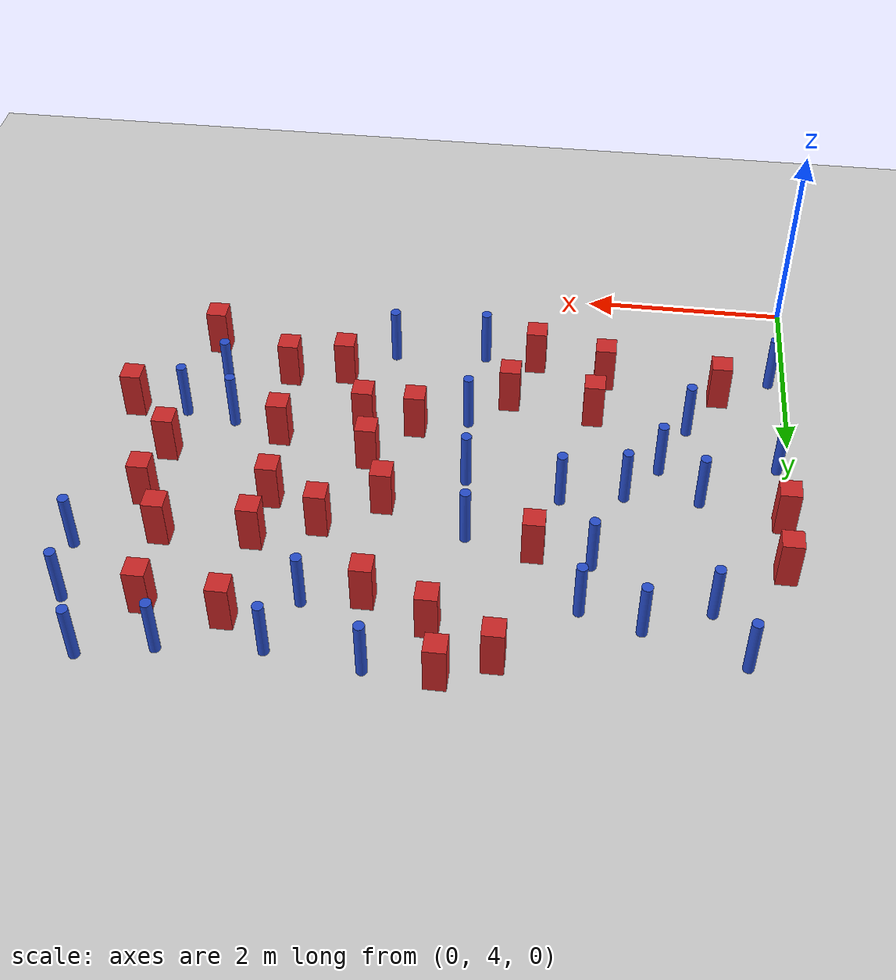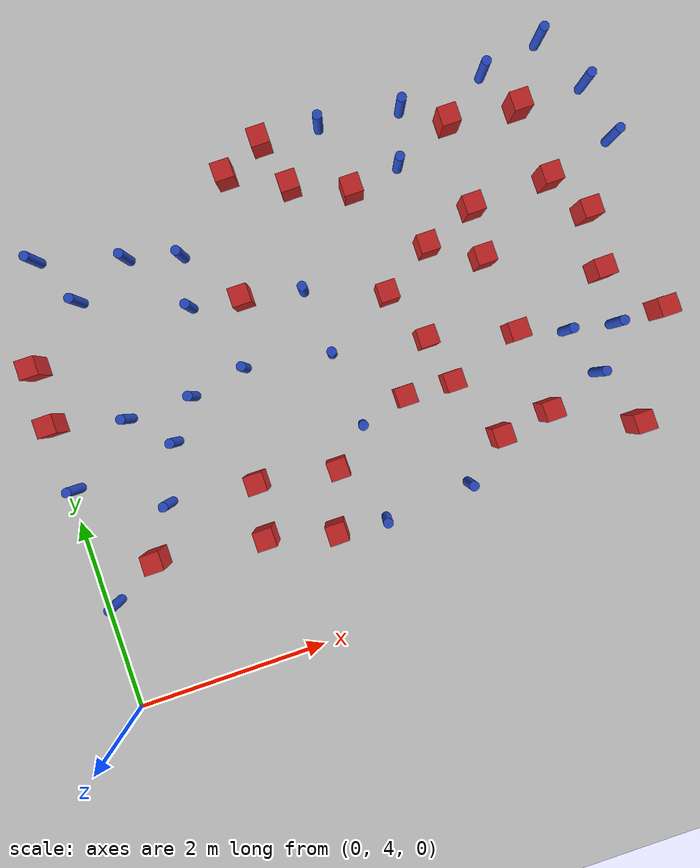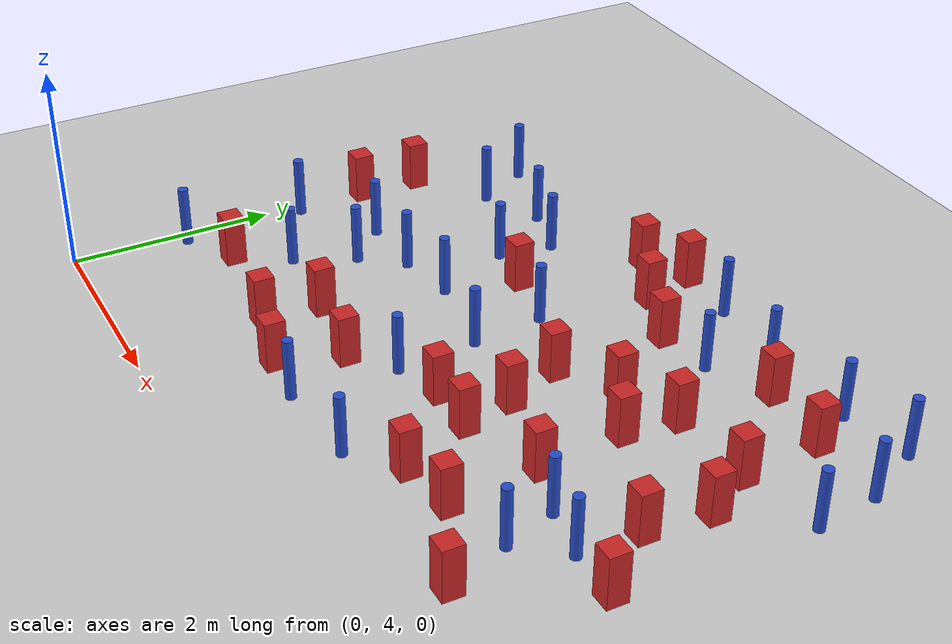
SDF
<sdf version="1.6">
 <world name="default">
  <model name="ground_plane">
   <static>1</static>
   <link name="link">
    <collision name="collision">
     <geometry><plane><normal>0 0 1</normal><size>100 100</size></plane></geometry>
     <surface><friction><ode><mu>100</mu><mu2>50</mu2></ode></friction></surface>
    </collision>
    <visual name="visual">
     <cast_shadows>0</cast_shadows>
     <geometry><plane><normal>0 0 1</normal><size>100 100</size></plane></geometry>
     <material>
      <ambient>1.0 1.0 1.0 1.0</ambient>
      <diffuse>0.8 0.8 0.8 1.0</diffuse>
      <specular>0.01 0.01 0.01 1.000000</specular>
     </material>
    </visual>
   </link>
  </model>
  <model name="pole_obstacle3">
   <static>true</static>
   <pose>3.03864295202 6.81444231652 2.88873142074e-08 -9.90536689859e-09 4.60219948989e-07 -1.20965994961e-07</pose>
   <link name="link">
    <pose>0 0 0.3 0 -0 0</pose>
    <inertial>
     <mass>1</mass>
     <inertia><ixx>0.145833</ixx><ixy>0</ixy><ixz>0</ixz><iyy>0.145833</iyy><iyz>0</iyz><izz>0.125</izz></inertia>
    </inertial>
    <collision name="collision">
     <geometry><cylinder><radius>0.05</radius><length>.6</length></cylinder></geometry>
    </collision>
    <visual name="visual">
     <geometry><cylinder><radius>0.05</radius><length>.6</length></cylinder></geometry>
     <material>
      <script><name>Gazebo/Blue</name><uri>file://media/materials/scripts/gazebo.material</uri></script>
     </material>
    </visual>
   </link>
  </model>
  <model name="pole_obstacle15">
   <static>true</static>
   <pose>4.30699988644 8.43849665752 2.88873142074e-08 -9.9053668967e-09 4.60219948993e-07 -1.20965994957e-07</pose>
   <link name="link">
    <pose>0 0 0.3 0 -0 0</pose>
    <inertial>
     <mass>1</mass>
     <inertia><ixx>0.145833</ixx><ixy>0</ixy><ixz>0</ixz><iyy>0.145833</iyy><iyz>0</iyz><izz>0.125</izz></inertia>
    </inertial>
    <collision name="collision">
     <geometry><cylinder><radius>0.05</radius><length>.6</length></cylinder></geometry>
    </collision>
    <visual name="visual">
     <geometry><cylinder><radius>0.05</radius><length>.6</length></cylinder></geometry>
     <material>
      <script><name>Gazebo/Blue</name><uri>file://media/materials/scripts/gazebo.material</uri></script>
     </material>
    </visual>
   </link>
  </model>
  <model name="pole_obstacle16">
   <static>true</static>
   <pose>3.65973734561 9.09488109856 2.88873142074e-08 -9.90536692318e-09 4.6021994893e-07 -1.20965994988e-07</pose>
   <link name="link">
    <pose>0 0 0.3 0 -0 0</pose>
    <inertial>
     <mass>1</mass>
     <inertia><ixx>0.145833</ixx><ixy>0</ixy><ixz>0</ixz><iyy>0.145833</iyy><iyz>0</iyz><izz>0.125</izz></inertia>
    </inertial>
    <collision name="collision">
     <geometry><cylinder><radius>0.05</radius><length>.6</length></cylinder></geometry>
    </collision>
    <visual name="visual">
     <geometry><cylinder><radius>0.05</radius><length>.6</length></cylinder></geometry>
     <material>
      <script><name>Gazebo/Blue</name><uri>file://media/materials/scripts/gazebo.material</uri></script>
     </material>
    </visual>
   </link>
  </model>
  <model name="square_post_obstacle17">
   <static>true</static>
   <pose>5.98129903861 7.36066911239 8.22691968438e-08 7.2212513382e-06 -7.54495500217e-07 2.29674213826e-05</pose>
   <link name="link">
    <pose>0 0 0.25 0 -0 0</pose>
    <inertial>
     <mass>100</mass>
     <inertia>
      <ixx>0.166667</ixx>
      <ixy>0</ixy>
      <ixz>0</ixz>
      <iyy>0.166667</iyy>
      <iyz>0</iyz>
      <izz>0.166667</izz>
     </inertia>
    </inertial>
    <collision name="collision"><geometry><box><size>.2 .2 .5</size></box></geometry></collision>
    <visual name="visual">
     <geometry><box><size>.2 .2 .5</size></box></geometry>
     <material>
      <script><name>Gazebo/Red</name><uri>file://media/materials/scripts/gazebo.material</uri></script>
     </material>
    </visual>
   </link>
  </model>
  <model name="pole_obstacle25">
   <static>true</static>
   <pose>5.43299807183 9.06527341968 2.88873142074e-08 -9.9053668967e-09 4.60219948993e-07 -1.20965994957e-07</pose>
   <link name="link">
    <pose>0 0 0.3 0 -0 0</pose>
    <inertial>
     <mass>1</mass>
     <inertia><ixx>0.145833</ixx><ixy>0</ixy><ixz>0</ixz><iyy>0.145833</iyy><iyz>0</iyz><izz>0.125</izz></inertia>
    </inertial>
    <collision name="collision">
     <geometry><cylinder><radius>0.05</radius><length>.6</length></cylinder></geometry>
    </collision>
    <visual name="visual">
     <geometry><cylinder><radius>0.05</radius><length>.6</length></cylinder></geometry>
     <material>
      <script><name>Gazebo/Blue</name><uri>file://media/materials/scripts/gazebo.material</uri></script>
     </material>
    </visual>
   </link>
  </model>
  <model name="pole_obstacle27">
   <static>true</static>
   <pose>0.976012090959 5.89816593282 2.88873142074e-08 -9.90536689421e-09 4.60219948999e-07 -1.20965994953e-07</pose>
   <link name="link">
    <pose>0 0 0.3 0 -0 0</pose>
    <inertial>
     <mass>1</mass>
     <inertia><ixx>0.145833</ixx><ixy>0</ixy><ixz>0</ixz><iyy>0.145833</iyy><iyz>0</iyz><izz>0.125</izz></inertia>
    </inertial>
    <collision name="collision">
     <geometry><cylinder><radius>0.05</radius><length>.6</length></cylinder></geometry>
    </collision>
    <visual name="visual">
     <geometry><cylinder><radius>0.05</radius><length>.6</length></cylinder></geometry>
     <material>
      <script><name>Gazebo/Blue</name><uri>file://media/materials/scripts/gazebo.material</uri></script>
     </material>
    </visual>
   </link>
  </model>
  <model name="pole_obstacle28">
   <static>true</static>
   <pose>4.51472767566 8.98976667733 2.88873142074e-08 -9.9053668967e-09 4.60219948993e-07 -1.20965994957e-07</pose>
   <link name="link">
    <pose>0 0 0.3 0 -0 0</pose>
    <inertial>
     <mass>1</mass>
     <inertia><ixx>0.145833</ixx><ixy>0</ixy><ixz>0</ixz><iyy>0.145833</iyy><iyz>0</iyz><izz>0.125</izz></inertia>
    </inertial>
    <collision name="collision">
     <geometry><cylinder><radius>0.05</radius><length>.6</length></cylinder></geometry>
    </collision>
    <visual name="visual">
     <geometry><cylinder><radius>0.05</radius><length>.6</length></cylinder></geometry>
     <material>
      <script><name>Gazebo/Blue</name><uri>file://media/materials/scripts/gazebo.material</uri></script>
     </material>
    </visual>
   </link>
  </model>
  <model name="pole_obstacle31">
   <static>true</static>
   <pose>1.35216881646 8.41963204359 2.88873142074e-08 -9.90536690474e-09 4.60219948974e-07 -1.2096599497e-07</pose>
   <link name="link">
    <pose>0 0 0.3 0 -0 0</pose>
    <inertial>
     <mass>1</mass>
     <inertia><ixx>0.145833</ixx><ixy>0</ixy><ixz>0</ixz><iyy>0.145833</iyy><iyz>0</iyz><izz>0.125</izz></inertia>
    </inertial>
    <collision name="collision">
     <geometry><cylinder><radius>0.05</radius><length>.6</length></cylinder></geometry>
    </collision>
    <visual name="visual">
     <geometry><cylinder><radius>0.05</radius><length>.6</length></cylinder></geometry>
     <material>
      <script><name>Gazebo/Blue</name><uri>file://media/materials/scripts/gazebo.material</uri></script>
     </material>
    </visual>
   </link>
  </model>
  <model name="pole_obstacle44">
   <static>true</static>
   <pose>0.120676297792 6.33723324968 2.88873142074e-08 -9.90536689835e-09 4.60219948989e-07 -1.20965994961e-07</pose>
   <link name="link">
    <pose>0 0 0.3 0 -0 0</pose>
    <inertial>
     <mass>1</mass>
     <inertia><ixx>0.145833</ixx><ixy>0</ixy><ixz>0</ixz><iyy>0.145833</iyy><iyz>0</iyz><izz>0.125</izz></inertia>
    </inertial>
    <collision name="collision">
     <geometry><cylinder><radius>0.05</radius><length>.6</length></cylinder></geometry>
    </collision>
    <visual name="visual">
     <geometry><cylinder><radius>0.05</radius><length>.6</length></cylinder></geometry>
     <material>
      <script><name>Gazebo/Blue</name><uri>file://media/materials/scripts/gazebo.material</uri></script>
     </material>
    </visual>
   </link>
  </model>
  <model name="square_post_obstacle35">
   <static>true</static>
   <pose>4.11081844571 6.15034953788 8.22691968438e-08 7.2212513382e-06 -7.54495500217e-07 2.29674213826e-05</pose>
   <link name="link">
    <pose>0 0 0.25 0 -0 0</pose>
    <inertial>
     <mass>100</mass>
     <inertia>
      <ixx>0.166667</ixx>
      <ixy>0</ixy>
      <ixz>0</ixz>
      <iyy>0.166667</iyy>
      <iyz>0</iyz>
      <izz>0.166667</izz>
     </inertia>
    </inertial>
    <collision name="collision"><geometry><box><size>.2 .2 .5</size></box></geometry></collision>
    <visual name="visual">
     <geometry><box><size>.2 .2 .5</size></box></geometry>
     <material>
      <script><name>Gazebo/Red</name><uri>file://media/materials/scripts/gazebo.material</uri></script>
     </material>
    </visual>
   </link>
  </model>
  <model name="pole_obstacle51">
   <static>true</static>
   <pose>3.10217281065 6.02231684743 2.88873142074e-08 -9.90536689859e-09 4.60219948989e-07 -1.20965994961e-07</pose>
   <link name="link">
    <pose>0 0 0.3 0 -0 0</pose>
    <inertial>
     <mass>1</mass>
     <inertia><ixx>0.145833</ixx><ixy>0</ixy><ixz>0</ixz><iyy>0.145833</iyy><iyz>0</iyz><izz>0.125</izz></inertia>
    </inertial>
    <collision name="collision">
     <geometry><cylinder><radius>0.05</radius><length>.6</length></cylinder></geometry>
    </collision>
    <visual name="visual">
     <geometry><cylinder><radius>0.05</radius><length>.6</length></cylinder></geometry>
     <material>
      <script><name>Gazebo/Blue</name><uri>file://media/materials/scripts/gazebo.material</uri></script>
     </material>
    </visual>
   </link>
  </model>
  <model name="square_post_obstacle44">
   <static>true</static>
   <pose>4.39857622158 5.47285064056 8.22691968438e-08 7.2212513382e-06 -7.54495500217e-07 2.29674213826e-05</pose>
   <link name="link">
    <pose>0 0 0.25 0 -0 0</pose>
    <inertial>
     <mass>100</mass>
     <inertia>
      <ixx>0.166667</ixx>
      <ixy>0</ixy>
      <ixz>0</ixz>
      <iyy>0.166667</iyy>
      <iyz>0</iyz>
      <izz>0.166667</izz>
     </inertia>
    </inertial>
    <collision name="collision"><geometry><box><size>.2 .2 .5</size></box></geometry></collision>
    <visual name="visual">
     <geometry><box><size>.2 .2 .5</size></box></geometry>
     <material>
      <script><name>Gazebo/Red</name><uri>file://media/materials/scripts/gazebo.material</uri></script>
     </material>
    </visual>
   </link>
  </model>
  <model name="pole_obstacle66">
   <static>true</static>
   <pose>0.459379372663 8.69627902844 2.88873142074e-08 -9.90536690577e-09 4.60219948971e-07 -1.20965994972e-07</pose>
   <link name="link">
    <pose>0 0 0.3 0 -0 0</pose>
    <inertial>
     <mass>1</mass>
     <inertia><ixx>0.145833</ixx><ixy>0</ixy><ixz>0</ixz><iyy>0.145833</iyy><iyz>0</iyz><izz>0.125</izz></inertia>
    </inertial>
    <collision name="collision">
     <geometry><cylinder><radius>0.05</radius><length>.6</length></cylinder></geometry>
    </collision>
    <visual name="visual">
     <geometry><cylinder><radius>0.05</radius><length>.6</length></cylinder></geometry>
     <material>
      <script><name>Gazebo/Blue</name><uri>file://media/materials/scripts/gazebo.material</uri></script>
     </material>
    </visual>
   </link>
  </model>
  <model name="pole_obstacle74">
   <static>true</static>
   <pose>2.14434241521 6.96483324691 2.88873142074e-08 -9.90536689859e-09 4.60219948989e-07 -1.20965994961e-07</pose>
   <link name="link">
    <pose>0 0 0.3 0 -0 0</pose>
    <inertial>
     <mass>1</mass>
     <inertia><ixx>0.145833</ixx><ixy>0</ixy><ixz>0</ixz><iyy>0.145833</iyy><iyz>0</iyz><izz>0.125</izz></inertia>
    </inertial>
    <collision name="collision">
     <geometry><cylinder><radius>0.05</radius><length>.6</length></cylinder></geometry>
    </collision>
    <visual name="visual">
     <geometry><cylinder><radius>0.05</radius><length>.6</length></cylinder></geometry>
     <material>
      <script><name>Gazebo/Blue</name><uri>file://media/materials/scripts/gazebo.material</uri></script>
     </material>
    </visual>
   </link>
  </model>
  <model name="square_post_obstacle68">
   <static>true</static>
   <pose>0.668670534018 5.40005335883 8.22691968438e-08 7.2212513382e-06 -7.54495500217e-07 2.29674213826e-05</pose>
   <link name="link">
    <pose>0 0 0.25 0 -0 0</pose>
    <inertial>
     <mass>100</mass>
     <inertia>
      <ixx>0.166667</ixx>
      <ixy>0</ixy>
      <ixz>0</ixz>
      <iyy>0.166667</iyy>
      <iyz>0</iyz>
      <izz>0.166667</izz>
     </inertia>
    </inertial>
    <collision name="collision"><geometry><box><size>.2 .2 .5</size></box></geometry></collision>
    <visual name="visual">
     <geometry><box><size>.2 .2 .5</size></box></geometry>
     <material>
      <script><name>Gazebo/Red</name><uri>file://media/materials/scripts/gazebo.material</uri></script>
     </material>
    </visual>
   </link>
  </model>
  <model name="pole_obstacle86">
   <static>true</static>
   <pose>3.02445287663 5.03569094359 2.88873142074e-08 -9.90536689859e-09 4.60219948989e-07 -1.20965994961e-07</pose>
   <link name="link">
    <pose>0 0 0.3 0 -0 0</pose>
    <inertial>
     <mass>1</mass>
     <inertia><ixx>0.145833</ixx><ixy>0</ixy><ixz>0</ixz><iyy>0.145833</iyy><iyz>0</iyz><izz>0.125</izz></inertia>
    </inertial>
    <collision name="collision">
     <geometry><cylinder><radius>0.05</radius><length>.6</length></cylinder></geometry>
    </collision>
    <visual name="visual">
     <geometry><cylinder><radius>0.05</radius><length>.6</length></cylinder></geometry>
     <material>
      <script><name>Gazebo/Blue</name><uri>file://media/materials/scripts/gazebo.material</uri></script>
     </material>
    </visual>
   </link>
  </model>
  <model name="pole_obstacle87">
   <static>true</static>
   <pose>2.96863462776 7.52436857401 2.88873142074e-08 -9.90536689859e-09 4.60219948989e-07 -1.20965994961e-07</pose>
   <link name="link">
    <pose>0 0 0.3 0 -0 0</pose>
    <inertial>
     <mass>1</mass>
     <inertia><ixx>0.145833</ixx><ixy>0</ixy><ixz>0</ixz><iyy>0.145833</iyy><iyz>0</iyz><izz>0.125</izz></inertia>
    </inertial>
    <collision name="collision">
     <geometry><cylinder><radius>0.05</radius><length>.6</length></cylinder></geometry>
    </collision>
    <visual name="visual">
     <geometry><cylinder><radius>0.05</radius><length>.6</length></cylinder></geometry>
     <material>
      <script><name>Gazebo/Blue</name><uri>file://media/materials/scripts/gazebo.material</uri></script>
     </material>
    </visual>
   </link>
  </model>
  <model name="square_post_obstacle75">
   <static>true</static>
   <pose>4.88923443948 6.42600402084 8.22691968438e-08 7.2212513382e-06 -7.54495500217e-07 2.29674213826e-05</pose>
   <link name="link">
    <pose>0 0 0.25 0 -0 0</pose>
    <inertial>
     <mass>100</mass>
     <inertia>
      <ixx>0.166667</ixx>
      <ixy>0</ixy>
      <ixz>0</ixz>
      <iyy>0.166667</iyy>
      <iyz>0</iyz>
      <izz>0.166667</izz>
     </inertia>
    </inertial>
    <collision name="collision"><geometry><box><size>.2 .2 .5</size></box></geometry></collision>
    <visual name="visual">
     <geometry><box><size>.2 .2 .5</size></box></geometry>
     <material>
      <script><name>Gazebo/Red</name><uri>file://media/materials/scripts/gazebo.material</uri></script>
     </material>
    </visual>
   </link>
  </model>
  <model name="square_post_obstacle77">
   <static>true</static>
   <pose>2.58141203347 8.90207049989 8.22691968438e-08 7.22125133819e-06 -7.54495500217e-07 2.29674213826e-05</pose>
   <link name="link">
    <pose>0 0 0.25 0 -0 0</pose>
    <inertial>
     <mass>100</mass>
     <inertia>
      <ixx>0.166667</ixx>
      <ixy>0</ixy>
      <ixz>0</ixz>
      <iyy>0.166667</iyy>
      <iyz>0</iyz>
      <izz>0.166667</izz>
     </inertia>
    </inertial>
    <collision name="collision"><geometry><box><size>.2 .2 .5</size></box></geometry></collision>
    <visual name="visual">
     <geometry><box><size>.2 .2 .5</size></box></geometry>
     <material>
      <script><name>Gazebo/Red</name><uri>file://media/materials/scripts/gazebo.material</uri></script>
     </material>
    </visual>
   </link>
  </model>
  <model name="square_post_obstacle84">
   <static>true</static>
   <pose>3.1728193472 8.59037875883 8.22691968438e-08 7.22125133819e-06 -7.54495500217e-07 2.29674213826e-05</pose>
   <link name="link">
    <pose>0 0 0.25 0 -0 0</pose>
    <inertial>
     <mass>100</mass>
     <inertia>
      <ixx>0.166667</ixx>
      <ixy>0</ixy>
      <ixz>0</ixz>
      <iyy>0.166667</iyy>
      <iyz>0</iyz>
      <izz>0.166667</izz>
     </inertia>
    </inertial>
    <collision name="collision"><geometry><box><size>.2 .2 .5</size></box></geometry></collision>
    <visual name="visual">
     <geometry><box><size>.2 .2 .5</size></box></geometry>
     <material>
      <script><name>Gazebo/Red</name><uri>file://media/materials/scripts/gazebo.material</uri></script>
     </material>
    </visual>
   </link>
  </model>
  <model name="pole_obstacle101">
   <static>true</static>
   <pose>5.88242215222 6.17776019954 2.88873142074e-08 -9.90536690842e-09 4.60219948965e-07 -1.20965994976e-07</pose>
   <link name="link">
    <pose>0 0 0.3 0 -0 0</pose>
    <inertial>
     <mass>1</mass>
     <inertia><ixx>0.145833</ixx><ixy>0</ixy><ixz>0</ixz><iyy>0.145833</iyy><iyz>0</iyz><izz>0.125</izz></inertia>
    </inertial>
    <collision name="collision">
     <geometry><cylinder><radius>0.05</radius><length>.6</length></cylinder></geometry>
    </collision>
    <visual name="visual">
     <geometry><cylinder><radius>0.05</radius><length>.6</length></cylinder></geometry>
     <material>
      <script><name>Gazebo/Blue</name><uri>file://media/materials/scripts/gazebo.material</uri></script>
     </material>
    </visual>
   </link>
  </model>
  <model name="square_post_obstacle97">
   <static>true</static>
   <pose>4.95143179043 5.55677921572 8.22691968438e-08 7.2212513382e-06 -7.54495500217e-07 2.29674213826e-05</pose>
   <link name="link">
    <pose>0 0 0.25 0 -0 0</pose>
    <inertial>
     <mass>100</mass>
     <inertia>
      <ixx>0.166667</ixx>
      <ixy>0</ixy>
      <ixz>0</ixz>
      <iyy>0.166667</iyy>
      <iyz>0</iyz>
      <izz>0.166667</izz>
     </inertia>
    </inertial>
    <collision name="collision"><geometry><box><size>.2 .2 .5</size></box></geometry></collision>
    <visual name="visual">
     <geometry><box><size>.2 .2 .5</size></box></geometry>
     <material>
      <script><name>Gazebo/Red</name><uri>file://media/materials/scripts/gazebo.material</uri></script>
     </material>
    </visual>
   </link>
  </model>
  <model name="square_post_obstacle99">
   <static>true</static>
   <pose>1.89270300083 5.8149623605 8.22691968438e-08 7.2212513382e-06 -7.54495500217e-07 2.29674213826e-05</pose>
   <link name="link">
    <pose>0 0 0.25 0 -0 0</pose>
    <inertial>
     <mass>100</mass>
     <inertia>
      <ixx>0.166667</ixx>
      <ixy>0</ixy>
      <ixz>0</ixz>
      <iyy>0.166667</iyy>
      <iyz>0</iyz>
      <izz>0.166667</izz>
     </inertia>
    </inertial>
    <collision name="collision"><geometry><box><size>.2 .2 .5</size></box></geometry></collision>
    <visual name="visual">
     <geometry><box><size>.2 .2 .5</size></box></geometry>
     <material>
      <script><name>Gazebo/Red</name><uri>file://media/materials/scripts/gazebo.material</uri></script>
     </material>
    </visual>
   </link>
  </model>
  <model name="square_post_obstacle104">
   <static>true</static>
   <pose>5.66223161554 8.61447241529 8.22691968438e-08 7.22125133819e-06 -7.54495500217e-07 2.29674213826e-05</pose>
   <link name="link">
    <pose>0 0 0.25 0 -0 0</pose>
    <inertial>
     <mass>100</mass>
     <inertia>
      <ixx>0.166667</ixx>
      <ixy>0</ixy>
      <ixz>0</ixz>
      <iyy>0.166667</iyy>
      <iyz>0</iyz>
      <izz>0.166667</izz>
     </inertia>
    </inertial>
    <collision name="collision"><geometry><box><size>.2 .2 .5</size></box></geometry></collision>
    <visual name="visual">
     <geometry><box><size>.2 .2 .5</size></box></geometry>
     <material>
      <script><name>Gazebo/Red</name><uri>file://media/materials/scripts/gazebo.material</uri></script>
     </material>
    </visual>
   </link>
  </model>
  <model name="pole_obstacle118">
   <static>true</static>
   <pose>3.94188217243 5.10732138128 2.88873142074e-08 -9.90536689859e-09 4.60219948989e-07 -1.20965994961e-07</pose>
   <link name="link">
    <pose>0 0 0.3 0 -0 0</pose>
    <inertial>
     <mass>1</mass>
     <inertia><ixx>0.145833</ixx><ixy>0</ixy><ixz>0</ixz><iyy>0.145833</iyy><iyz>0</iyz><izz>0.125</izz></inertia>
    </inertial>
    <collision name="collision">
     <geometry><cylinder><radius>0.05</radius><length>.6</length></cylinder></geometry>
    </collision>
    <visual name="visual">
     <geometry><cylinder><radius>0.05</radius><length>.6</length></cylinder></geometry>
     <material>
      <script><name>Gazebo/Blue</name><uri>file://media/materials/scripts/gazebo.material</uri></script>
     </material>
    </visual>
   </link>
  </model>
  <model name="square_post_obstacle119">
   <static>true</static>
   <pose>0.102237771472 7.64610580293 8.22691968438e-08 7.2212513382e-06 -7.54495500217e-07 2.29674213826e-05</pose>
   <link name="link">
    <pose>0 0 0.25 0 -0 0</pose>
    <inertial>
     <mass>100</mass>
     <inertia>
      <ixx>0.166667</ixx>
      <ixy>0</ixy>
      <ixz>0</ixz>
      <iyy>0.166667</iyy>
      <iyz>0</iyz>
      <izz>0.166667</izz>
     </inertia>
    </inertial>
    <collision name="collision"><geometry><box><size>.2 .2 .5</size></box></geometry></collision>
    <visual name="visual">
     <geometry><box><size>.2 .2 .5</size></box></geometry>
     <material>
      <script><name>Gazebo/Red</name><uri>file://media/materials/scripts/gazebo.material</uri></script>
     </material>
    </visual>
   </link>
  </model>
  <model name="pole_obstacle123">
   <static>true</static>
   <pose>0.747085627629 8.15610434206 2.88873142074e-08 -9.90536690779e-09 4.60219948967e-07 -1.20965994975e-07</pose>
   <link name="link">
    <pose>0 0 0.3 0 -0 0</pose>
    <inertial>
     <mass>1</mass>
     <inertia><ixx>0.145833</ixx><ixy>0</ixy><ixz>0</ixz><iyy>0.145833</iyy><iyz>0</iyz><izz>0.125</izz></inertia>
    </inertial>
    <collision name="collision">
     <geometry><cylinder><radius>0.05</radius><length>.6</length></cylinder></geometry>
    </collision>
    <visual name="visual">
     <geometry><cylinder><radius>0.05</radius><length>.6</length></cylinder></geometry>
     <material>
      <script><name>Gazebo/Blue</name><uri>file://media/materials/scripts/gazebo.material</uri></script>
     </material>
    </visual>
   </link>
  </model>
  <model name="pole_obstacle126">
   <static>true</static>
   <pose>6.38892064635 8.62039477068 2.88873142074e-08 -9.9053668967e-09 4.60219948993e-07 -1.20965994957e-07</pose>
   <link name="link">
    <pose>0 0 0.3 0 -0 0</pose>
    <inertial>
     <mass>1</mass>
     <inertia><ixx>0.145833</ixx><ixy>0</ixy><ixz>0</ixz><iyy>0.145833</iyy><iyz>0</iyz><izz>0.125</izz></inertia>
    </inertial>
    <collision name="collision">
     <geometry><cylinder><radius>0.05</radius><length>.6</length></cylinder></geometry>
    </collision>
    <visual name="visual">
     <geometry><cylinder><radius>0.05</radius><length>.6</length></cylinder></geometry>
     <material>
      <script><name>Gazebo/Blue</name><uri>file://media/materials/scripts/gazebo.material</uri></script>
     </material>
    </visual>
   </link>
  </model>
  <model name="square_post_obstacle127">
   <static>true</static>
   <pose>3.76746285897 7.21482119935 8.22691968438e-08 7.2212513382e-06 -7.54495500217e-07 2.29674213826e-05</pose>
   <link name="link">
    <pose>0 0 0.25 0 -0 0</pose>
    <inertial>
     <mass>100</mass>
     <inertia>
      <ixx>0.166667</ixx>
      <ixy>0</ixy>
      <ixz>0</ixz>
      <iyy>0.166667</iyy>
      <iyz>0</iyz>
      <izz>0.166667</izz>
     </inertia>
    </inertial>
    <collision name="collision"><geometry><box><size>.2 .2 .5</size></box></geometry></collision>
    <visual name="visual">
     <geometry><box><size>.2 .2 .5</size></box></geometry>
     <material>
      <script><name>Gazebo/Red</name><uri>file://media/materials/scripts/gazebo.material</uri></script>
     </material>
    </visual>
   </link>
  </model>
  <model name="pole_obstacle137">
   <static>true</static>
   <pose>6.0916814653 9.20709681481 2.88873142074e-08 -9.9053668967e-09 4.60219948993e-07 -1.20965994957e-07</pose>
   <link name="link">
    <pose>0 0 0.3 0 -0 0</pose>
    <inertial>
     <mass>1</mass>
     <inertia><ixx>0.145833</ixx><ixy>0</ixy><ixz>0</ixz><iyy>0.145833</iyy><iyz>0</iyz><izz>0.125</izz></inertia>
    </inertial>
    <collision name="collision">
     <geometry><cylinder><radius>0.05</radius><length>.6</length></cylinder></geometry>
    </collision>
    <visual name="visual">
     <geometry><cylinder><radius>0.05</radius><length>.6</length></cylinder></geometry>
     <material>
      <script><name>Gazebo/Blue</name><uri>file://media/materials/scripts/gazebo.material</uri></script>
     </material>
    </visual>
   </link>
  </model>
  <model name="pole_obstacle140">
   <static>true</static>
   <pose>1.55192966251 6.85830661165 2.88873142074e-08 -9.90536689852e-09 4.60219948989e-07 -1.2096599496e-07</pose>
   <link name="link">
    <pose>0 0 0.3 0 -0 0</pose>
    <inertial>
     <mass>1</mass>
     <inertia><ixx>0.145833</ixx><ixy>0</ixy><ixz>0</ixz><iyy>0.145833</iyy><iyz>0</iyz><izz>0.125</izz></inertia>
    </inertial>
    <collision name="collision">
     <geometry><cylinder><radius>0.05</radius><length>.6</length></cylinder></geometry>
    </collision>
    <visual name="visual">
     <geometry><cylinder><radius>0.05</radius><length>.6</length></cylinder></geometry>
     <material>
      <script><name>Gazebo/Blue</name><uri>file://media/materials/scripts/gazebo.material</uri></script>
     </material>
    </visual>
   </link>
  </model>
  <model name="square_post_obstacle137">
   <static>true</static>
   <pose>0.0902714207197 7.03556078576 8.22691968438e-08 7.2212513382e-06 -7.54495500217e-07 2.29674213826e-05</pose>
   <link name="link">
    <pose>0 0 0.25 0 -0 0</pose>
    <inertial>
     <mass>100</mass>
     <inertia>
      <ixx>0.166667</ixx>
      <ixy>0</ixy>
      <ixz>0</ixz>
      <iyy>0.166667</iyy>
      <iyz>0</iyz>
      <izz>0.166667</izz>
     </inertia>
    </inertial>
    <collision name="collision"><geometry><box><size>.2 .2 .5</size></box></geometry></collision>
    <visual name="visual">
     <geometry><box><size>.2 .2 .5</size></box></geometry>
     <material>
      <script><name>Gazebo/Red</name><uri>file://media/materials/scripts/gazebo.material</uri></script>
     </material>
    </visual>
   </link>
  </model>
  <model name="square_post_obstacle145">
   <static>true</static>
   <pose>3.9975814107 6.65647539808 8.22691968438e-08 7.2212513382e-06 -7.54495500217e-07 2.29674213826e-05</pose>
   <link name="link">
    <pose>0 0 0.25 0 -0 0</pose>
    <inertial>
     <mass>100</mass>
     <inertia>
      <ixx>0.166667</ixx>
      <ixy>0</ixy>
      <ixz>0</ixz>
      <iyy>0.166667</iyy>
      <iyz>0</iyz>
      <izz>0.166667</izz>
     </inertia>
    </inertial>
    <collision name="collision"><geometry><box><size>.2 .2 .5</size></box></geometry></collision>
    <visual name="visual">
     <geometry><box><size>.2 .2 .5</size></box></geometry>
     <material>
      <script><name>Gazebo/Red</name><uri>file://media/materials/scripts/gazebo.material</uri></script>
     </material>
    </visual>
   </link>
  </model>
  <model name="square_post_obstacle146">
   <static>true</static>
   <pose>4.81255555866 7.25629424902 8.22691968438e-08 7.2212513382e-06 -7.54495500217e-07 2.29674213826e-05</pose>
   <link name="link">
    <pose>0 0 0.25 0 -0 0</pose>
    <inertial>
     <mass>100</mass>
     <inertia>
      <ixx>0.166667</ixx>
      <ixy>0</ixy>
      <ixz>0</ixz>
      <iyy>0.166667</iyy>
      <iyz>0</iyz>
      <izz>0.166667</izz>
     </inertia>
    </inertial>
    <collision name="collision"><geometry><box><size>.2 .2 .5</size></box></geometry></collision>
    <visual name="visual">
     <geometry><box><size>.2 .2 .5</size></box></geometry>
     <material>
      <script><name>Gazebo/Red</name><uri>file://media/materials/scripts/gazebo.material</uri></script>
     </material>
    </visual>
   </link>
  </model>
  <model name="square_post_obstacle148">
   <static>true</static>
   <pose>1.80631568342 5.26164226885 8.22691968438e-08 7.2212513382e-06 -7.54495500217e-07 2.29674213826e-05</pose>
   <link name="link">
    <pose>0 0 0.25 0 -0 0</pose>
    <inertial>
     <mass>100</mass>
     <inertia>
      <ixx>0.166667</ixx>
      <ixy>0</ixy>
      <ixz>0</ixz>
      <iyy>0.166667</iyy>
      <iyz>0</iyz>
      <izz>0.166667</izz>
     </inertia>
    </inertial>
    <collision name="collision"><geometry><box><size>.2 .2 .5</size></box></geometry></collision>
    <visual name="visual">
     <geometry><box><size>.2 .2 .5</size></box></geometry>
     <material>
      <script><name>Gazebo/Red</name><uri>file://media/materials/scripts/gazebo.material</uri></script>
     </material>
    </visual>
   </link>
  </model>
  <model name="square_post_obstacle149">
   <static>true</static>
   <pose>3.76483884989 8.34675937711 8.22691968438e-08 7.22125133819e-06 -7.54495500217e-07 2.29674213826e-05</pose>
   <link name="link">
    <pose>0 0 0.25 0 -0 0</pose>
    <inertial>
     <mass>100</mass>
     <inertia>
      <ixx>0.166667</ixx>
      <ixy>0</ixy>
      <ixz>0</ixz>
      <iyy>0.166667</iyy>
      <iyz>0</iyz>
      <izz>0.166667</izz>
     </inertia>
    </inertial>
    <collision name="collision"><geometry><box><size>.2 .2 .5</size></box></geometry></collision>
    <visual name="visual">
     <geometry><box><size>.2 .2 .5</size></box></geometry>
     <material>
      <script><name>Gazebo/Red</name><uri>file://media/materials/scripts/gazebo.material</uri></script>
     </material>
    </visual>
   </link>
  </model>
  <model name="square_post_obstacle150">
   <static>true</static>
   <pose>2.34449615319 7.65292995254 8.22691968438e-08 7.2212513382e-06 -7.54495500217e-07 2.29674213826e-05</pose>
   <link name="link">
    <pose>0 0 0.25 0 -0 0</pose>
    <inertial>
     <mass>100</mass>
     <inertia>
      <ixx>0.166667</ixx>
      <ixy>0</ixy>
      <ixz>0</ixz>
      <iyy>0.166667</iyy>
      <iyz>0</iyz>
      <izz>0.166667</izz>
     </inertia>
    </inertial>
    <collision name="collision"><geometry><box><size>.2 .2 .5</size></box></geometry></collision>
    <visual name="visual">
     <geometry><box><size>.2 .2 .5</size></box></geometry>
     <material>
      <script><name>Gazebo/Red</name><uri>file://media/materials/scripts/gazebo.material</uri></script>
     </material>
    </visual>
   </link>
  </model>
  <model name="pole_obstacle163">
   <static>true</static>
   <pose>0.151017254767 5.10963438807 2.88873142074e-08 -9.90536689843e-09 4.60219948989e-07 -1.20965994962e-07</pose>
   <link name="link">
    <pose>0 0 0.3 0 -0 0</pose>
    <inertial>
     <mass>1</mass>
     <inertia><ixx>0.145833</ixx><ixy>0</ixy><ixz>0</ixz><iyy>0.145833</iyy><iyz>0</iyz><izz>0.125</izz></inertia>
    </inertial>
    <collision name="collision">
     <geometry><cylinder><radius>0.05</radius><length>.6</length></cylinder></geometry>
    </collision>
    <visual name="visual">
     <geometry><cylinder><radius>0.05</radius><length>.6</length></cylinder></geometry>
     <material>
      <script><name>Gazebo/Blue</name><uri>file://media/materials/scripts/gazebo.material</uri></script>
     </material>
    </visual>
   </link>
  </model>
  <model name="pole_obstacle164">
   <static>true</static>
   <pose>5.54958386093 5.75950807335 2.88873142074e-08 -9.90536690842e-09 4.60219948965e-07 -1.20965994976e-07</pose>
   <link name="link">
    <pose>0 0 0.3 0 -0 0</pose>
    <inertial>
     <mass>1</mass>
     <inertia><ixx>0.145833</ixx><ixy>0</ixy><ixz>0</ixz><iyy>0.145833</iyy><iyz>0</iyz><izz>0.125</izz></inertia>
    </inertial>
    <collision name="collision">
     <geometry><cylinder><radius>0.05</radius><length>.6</length></cylinder></geometry>
    </collision>
    <visual name="visual">
     <geometry><cylinder><radius>0.05</radius><length>.6</length></cylinder></geometry>
     <material>
      <script><name>Gazebo/Blue</name><uri>file://media/materials/scripts/gazebo.material</uri></script>
     </material>
    </visual>
   </link>
  </model>
  <model name="square_post_obstacle160">
   <static>true</static>
   <pose>5.91400141661 6.74876449255 8.22691968438e-08 7.2212513382e-06 -7.54495500217e-07 2.29674213826e-05</pose>
   <link name="link">
    <pose>0 0 0.25 0 -0 0</pose>
    <inertial>
     <mass>100</mass>
     <inertia>
      <ixx>0.166667</ixx>
      <ixy>0</ixy>
      <ixz>0</ixz>
      <iyy>0.166667</iyy>
      <iyz>0</iyz>
      <izz>0.166667</izz>
     </inertia>
    </inertial>
    <collision name="collision"><geometry><box><size>.2 .2 .5</size></box></geometry></collision>
    <visual name="visual">
     <geometry><box><size>.2 .2 .5</size></box></geometry>
     <material>
      <script><name>Gazebo/Red</name><uri>file://media/materials/scripts/gazebo.material</uri></script>
     </material>
    </visual>
   </link>
  </model>
  <model name="square_post_obstacle161">
   <static>true</static>
   <pose>2.72356786532 5.68707156674 8.22691968438e-08 7.2212513382e-06 -7.54495500217e-07 2.29674213826e-05</pose>
   <link name="link">
    <pose>0 0 0.25 0 -0 0</pose>
    <inertial>
     <mass>100</mass>
     <inertia>
      <ixx>0.166667</ixx>
      <ixy>0</ixy>
      <ixz>0</ixz>
      <iyy>0.166667</iyy>
      <iyz>0</iyz>
      <izz>0.166667</izz>
     </inertia>
    </inertial>
    <collision name="collision"><geometry><box><size>.2 .2 .5</size></box></geometry></collision>
    <visual name="visual">
     <geometry><box><size>.2 .2 .5</size></box></geometry>
     <material>
      <script><name>Gazebo/Red</name><uri>file://media/materials/scripts/gazebo.material</uri></script>
     </material>
    </visual>
   </link>
  </model>
  <model name="square_post_obstacle166">
   <static>true</static>
   <pose>2.50752982406 5.08471932189 8.22691968438e-08 7.2212513382e-06 -7.54495500217e-07 2.29674213826e-05</pose>
   <link name="link">
    <pose>0 0 0.25 0 -0 0</pose>
    <inertial>
     <mass>100</mass>
     <inertia>
      <ixx>0.166667</ixx>
      <ixy>0</ixy>
      <ixz>0</ixz>
      <iyy>0.166667</iyy>
      <iyz>0</iyz>
      <izz>0.166667</izz>
     </inertia>
    </inertial>
    <collision name="collision"><geometry><box><size>.2 .2 .5</size></box></geometry></collision>
    <visual name="visual">
     <geometry><box><size>.2 .2 .5</size></box></geometry>
     <material>
      <script><name>Gazebo/Red</name><uri>file://media/materials/scripts/gazebo.material</uri></script>
     </material>
    </visual>
   </link>
  </model>
  <model name="pole_obstacle170">
   <static>true</static>
   <pose>1.2359181535 6.47038852231 2.88873142074e-08 -9.90536689852e-09 4.60219948989e-07 -1.2096599496e-07</pose>
   <link name="link">
    <pose>0 0 0.3 0 -0 0</pose>
    <inertial>
     <mass>1</mass>
     <inertia><ixx>0.145833</ixx><ixy>0</ixy><ixz>0</ixz><iyy>0.145833</iyy><iyz>0</iyz><izz>0.125</izz></inertia>
    </inertial>
    <collision name="collision">
     <geometry><cylinder><radius>0.05</radius><length>.6</length></cylinder></geometry>
    </collision>
    <visual name="visual">
     <geometry><cylinder><radius>0.05</radius><length>.6</length></cylinder></geometry>
     <material>
      <script><name>Gazebo/Blue</name><uri>file://media/materials/scripts/gazebo.material</uri></script>
     </material>
    </visual>
   </link>
  </model>
  <model name="pole_obstacle177">
   <static>true</static>
   <pose>5.38298622764 6.26649760411 2.88873142074e-08 -9.90536690842e-09 4.60219948965e-07 -1.20965994976e-07</pose>
   <link name="link">
    <pose>0 0 0.3 0 -0 0</pose>
    <inertial>
     <mass>1</mass>
     <inertia><ixx>0.145833</ixx><ixy>0</ixy><ixz>0</ixz><iyy>0.145833</iyy><iyz>0</iyz><izz>0.125</izz></inertia>
    </inertial>
    <collision name="collision">
     <geometry><cylinder><radius>0.05</radius><length>.6</length></cylinder></geometry>
    </collision>
    <visual name="visual">
     <geometry><cylinder><radius>0.05</radius><length>.6</length></cylinder></geometry>
     <material>
      <script><name>Gazebo/Blue</name><uri>file://media/materials/scripts/gazebo.material</uri></script>
     </material>
    </visual>
   </link>
  </model>
  <model name="pole_obstacle179">
   <static>true</static>
   <pose>6.47360211618 8.00232773117 2.88873142074e-08 -9.90536690354e-09 4.60219948977e-07 -1.20965994967e-07</pose>
   <link name="link">
    <pose>0 0 0.3 0 -0 0</pose>
    <inertial>
     <mass>1</mass>
     <inertia><ixx>0.145833</ixx><ixy>0</ixy><ixz>0</ixz><iyy>0.145833</iyy><iyz>0</iyz><izz>0.125</izz></inertia>
    </inertial>
    <collision name="collision">
     <geometry><cylinder><radius>0.05</radius><length>.6</length></cylinder></geometry>
    </collision>
    <visual name="visual">
     <geometry><cylinder><radius>0.05</radius><length>.6</length></cylinder></geometry>
     <material>
      <script><name>Gazebo/Blue</name><uri>file://media/materials/scripts/gazebo.material</uri></script>
     </material>
    </visual>
   </link>
  </model>
  <model name="square_post_obstacle180">
   <static>true</static>
   <pose>4.92452459419 8.70221772757 8.22691968438e-08 7.22125133819e-06 -7.54495500217e-07 2.29674213826e-05</pose>
   <link name="link">
    <pose>0 0 0.25 0 -0 0</pose>
    <inertial>
     <mass>100</mass>
     <inertia>
      <ixx>0.166667</ixx>
      <ixy>0</ixy>
      <ixz>0</ixz>
      <iyy>0.166667</iyy>
      <iyz>0</iyz>
      <izz>0.166667</izz>
     </inertia>
    </inertial>
    <collision name="collision"><geometry><box><size>.2 .2 .5</size></box></geometry></collision>
    <visual name="visual">
     <geometry><box><size>.2 .2 .5</size></box></geometry>
     <material>
      <script><name>Gazebo/Red</name><uri>file://media/materials/scripts/gazebo.material</uri></script>
     </material>
    </visual>
   </link>
  </model>
  <model name="square_post_obstacle182">
   <static>true</static>
   <pose>3.60317291806 6.16482772766 8.22691968438e-08 7.2212513382e-06 -7.54495500217e-07 2.29674213826e-05</pose>
   <link name="link">
    <pose>0 0 0.25 0 -0 0</pose>
    <inertial>
     <mass>100</mass>
     <inertia>
      <ixx>0.166667</ixx>
      <ixy>0</ixy>
      <ixz>0</ixz>
      <iyy>0.166667</iyy>
      <iyz>0</iyz>
      <izz>0.166667</izz>
     </inertia>
    </inertial>
    <collision name="collision"><geometry><box><size>.2 .2 .5</size></box></geometry></collision>
    <visual name="visual">
     <geometry><box><size>.2 .2 .5</size></box></geometry>
     <material>
      <script><name>Gazebo/Red</name><uri>file://media/materials/scripts/gazebo.material</uri></script>
     </material>
    </visual>
   </link>
  </model>
  <model name="square_post_obstacle185">
   <static>true</static>
   <pose>4.30940917364 7.55162524202 8.22691968438e-08 7.2212513382e-06 -7.54495500217e-07 2.29674213826e-05</pose>
   <link name="link">
    <pose>0 0 0.25 0 -0 0</pose>
    <inertial>
     <mass>100</mass>
     <inertia>
      <ixx>0.166667</ixx>
      <ixy>0</ixy>
      <ixz>0</ixz>
      <iyy>0.166667</iyy>
      <iyz>0</iyz>
      <izz>0.166667</izz>
     </inertia>
    </inertial>
    <collision name="collision"><geometry><box><size>.2 .2 .5</size></box></geometry></collision>
    <visual name="visual">
     <geometry><box><size>.2 .2 .5</size></box></geometry>
     <material>
      <script><name>Gazebo/Red</name><uri>file://media/materials/scripts/gazebo.material</uri></script>
     </material>
    </visual>
   </link>
  </model>
  <model name="square_post_obstacle193">
   <static>true</static>
   <pose>5.71733162463 7.81718850087 8.22691968438e-08 7.2212513382e-06 -7.54495500217e-07 2.29674213826e-05</pose>
   <link name="link">
    <pose>0 0 0.25 0 -0 0</pose>
    <inertial>
     <mass>100</mass>
     <inertia>
      <ixx>0.166667</ixx>
      <ixy>0</ixy>
      <ixz>0</ixz>
      <iyy>0.166667</iyy>
      <iyz>0</iyz>
      <izz>0.166667</izz>
     </inertia>
    </inertial>
    <collision name="collision"><geometry><box><size>.2 .2 .5</size></box></geometry></collision>
    <visual name="visual">
     <geometry><box><size>.2 .2 .5</size></box></geometry>
     <material>
      <script><name>Gazebo/Red</name><uri>file://media/materials/scripts/gazebo.material</uri></script>
     </material>
    </visual>
   </link>
  </model>
  <model name="square_post_obstacle196">
   <static>true</static>
   <pose>3.0344260506 9.11894281917 8.22691968438e-08 7.22125133819e-06 -7.54495500217e-07 2.29674213826e-05</pose>
   <link name="link">
    <pose>0 0 0.25 0 -0 0</pose>
    <inertial>
     <mass>100</mass>
     <inertia>
      <ixx>0.166667</ixx>
      <ixy>0</ixy>
      <ixz>0</ixz>
      <iyy>0.166667</iyy>
      <iyz>0</iyz>
      <izz>0.166667</izz>
     </inertia>
    </inertial>
    <collision name="collision"><geometry><box><size>.2 .2 .5</size></box></geometry></collision>
    <visual name="visual">
     <geometry><box><size>.2 .2 .5</size></box></geometry>
     <material>
      <script><name>Gazebo/Red</name><uri>file://media/materials/scripts/gazebo.material</uri></script>
     </material>
    </visual>
   </link>
  </model>
  <model name="square_post_obstacle209">
   <static>true</static>
   <pose>5.77331013153 5.15055199495 8.22691968438e-08 7.2212513382e-06 -7.54495500217e-07 2.29674213826e-05</pose>
   <link name="link">
    <pose>0 0 0.25 0 -0 0</pose>
    <inertial>
     <mass>100</mass>
     <inertia>
      <ixx>0.166667</ixx>
      <ixy>0</ixy>
      <ixz>0</ixz>
      <iyy>0.166667</iyy>
      <iyz>0</iyz>
      <izz>0.166667</izz>
     </inertia>
    </inertial>
    <collision name="collision"><geometry><box><size>.2 .2 .5</size></box></geometry></collision>
    <visual name="visual">
     <geometry><box><size>.2 .2 .5</size></box></geometry>
     <material>
      <script><name>Gazebo/Red</name><uri>file://media/materials/scripts/gazebo.material</uri></script>
     </material>
    </visual>
   </link>
  </model>
  <model name="pole_obstacle193">
   <static>true</static>
   <pose>1.81574565195 7.73261281611 2.88873142074e-08 -9.90536689852e-09 4.60219948989e-07 -1.2096599496e-07</pose>
   <link name="link">
    <pose>0 0 0.3 0 -0 0</pose>
    <inertial>
     <mass>1</mass>
     <inertia><ixx>0.145833</ixx><ixy>0</ixy><ixz>0</ixz><iyy>0.145833</iyy><iyz>0</iyz><izz>0.125</izz></inertia>
    </inertial>
    <collision name="collision">
     <geometry><cylinder><radius>0.05</radius><length>.6</length></cylinder></geometry>
    </collision>
    <visual name="visual">
     <geometry><cylinder><radius>0.05</radius><length>.6</length></cylinder></geometry>
     <material>
      <script><name>Gazebo/Blue</name><uri>file://media/materials/scripts/gazebo.material</uri></script>
     </material>
    </visual>
   </link>
  </model>
  <model name="pole_obstacle195">
   <static>true</static>
   <pose>0.852388665321 6.85071014815 2.88873142074e-08 -9.90536689661e-09 4.60219948993e-07 -1.20965994957e-07</pose>
   <link name="link">
    <pose>0 0 0.3 0 -0 0</pose>
    <inertial>
     <mass>1</mass>
     <inertia><ixx>0.145833</ixx><ixy>0</ixy><ixz>0</ixz><iyy>0.145833</iyy><iyz>0</iyz><izz>0.125</izz></inertia>
    </inertial>
    <collision name="collision">
     <geometry><cylinder><radius>0.05</radius><length>.6</length></cylinder></geometry>
    </collision>
    <visual name="visual">
     <geometry><cylinder><radius>0.05</radius><length>.6</length></cylinder></geometry>
     <material>
      <script><name>Gazebo/Blue</name><uri>file://media/materials/scripts/gazebo.material</uri></script>
     </material>
    </visual>
   </link>
  </model>
  <model name="pole_obstacle196">
   <static>true</static>
   <pose>1.899314266 8.26433675945 2.88873142074e-08 -9.90536690474e-09 4.60219948974e-07 -1.2096599497e-07</pose>
   <link name="link">
    <pose>0 0 0.3 0 -0 0</pose>
    <inertial>
     <mass>1</mass>
     <inertia><ixx>0.145833</ixx><ixy>0</ixy><ixz>0</ixz><iyy>0.145833</iyy><iyz>0</iyz><izz>0.125</izz></inertia>
    </inertial>
    <collision name="collision">
     <geometry><cylinder><radius>0.05</radius><length>.6</length></cylinder></geometry>
    </collision>
    <visual name="visual">
     <geometry><cylinder><radius>0.05</radius><length>.6</length></cylinder></geometry>
     <material>
      <script><name>Gazebo/Blue</name><uri>file://media/materials/scripts/gazebo.material</uri></script>
     </material>
    </visual>
   </link>
  </model>
  <model name="square_post_obstacle222">
   <static>true</static>
   <pose>4.87246003262 7.78030996466 8.22691968438e-08 7.2212513382e-06 -7.54495500217e-07 2.29674213826e-05</pose>
   <link name="link">
    <pose>0 0 0.25 0 -0 0</pose>
    <inertial>
     <mass>100</mass>
     <inertia>
      <ixx>0.166667</ixx>
      <ixy>0</ixy>
      <ixz>0</ixz>
      <iyy>0.166667</iyy>
      <iyz>0</iyz>
      <izz>0.166667</izz>
     </inertia>
    </inertial>
    <collision name="collision"><geometry><box><size>.2 .2 .5</size></box></geometry></collision>
    <visual name="visual">
     <geometry><box><size>.2 .2 .5</size></box></geometry>
     <material>
      <script><name>Gazebo/Red</name><uri>file://media/materials/scripts/gazebo.material</uri></script>
     </material>
    </visual>
   </link>
  </model>
  <model name="square_post_obstacle230">
   <static>true</static>
   <pose>6.38284003262 6.17556996466 8.22691968438e-08 7.22125133819e-06 -7.54495500217e-07 2.29674213826e-05</pose>
   <link name="link">
    <pose>0 0 0.25 0 -0 0</pose>
    <inertial>
     <mass>100</mass>
     <inertia>
      <ixx>0.166667</ixx>
      <ixy>0</ixy>
      <ixz>0</ixz>
      <iyy>0.166667</iyy>
      <iyz>0</iyz>
      <izz>0.166667</izz>
     </inertia>
    </inertial>
    <collision name="collision"><geometry><box><size>.2 .2 .5</size></box></geometry></collision>
    <visual name="visual">
     <geometry><box><size>.2 .2 .5</size></box></geometry>
     <material>
      <script><name>Gazebo/Red</name><uri>file://media/materials/scripts/gazebo.material</uri></script>
     </material>
    </visual>
   </link>
  </model>
 </world>
</sdf>
